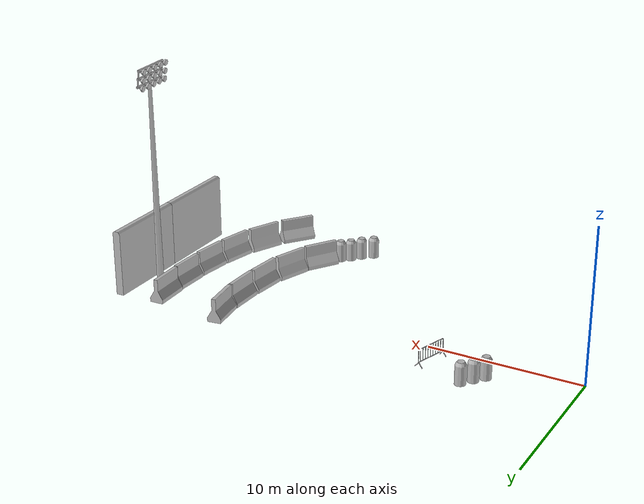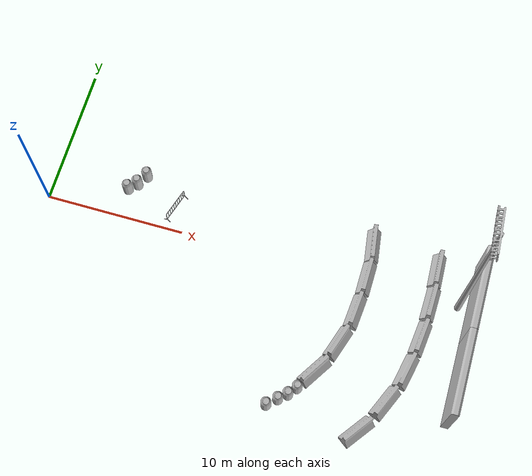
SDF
<sdf version="1.7">
 <world name="default">
  <model name="aws_robomaker_racetrack_CrashworthBucket_01_15">
   <frame name="aws_CrashworthBucket_01::__model__" attached_to="aws_CrashworthBucket_01::body">
    <pose relative_to="__model__">0 0 0 0 -0 0</pose>
   </frame>
   <link name="aws_CrashworthBucket_01::body">
    <pose relative_to="aws_CrashworthBucket_01::__model__">0 0 0 0 -0 0</pose>
    <inertial>
     <mass>5</mass>
     <inertia><ixx>1</ixx><ixy>0</ixy><ixz>0</ixz><iyy>1</iyy><iyz>0</iyz><izz>1</izz></inertia>
    </inertial>
    <visual name="visual">
     <geometry>
      <mesh>
       <uri>file://models/aws_robomaker_racetrack_CrashworthBucket_01/meshes/aws_CrashworthBucket_01_visual.DAE</uri>
      </mesh>
     </geometry>
     <material><shader type="pixel"><normal_map>__default__</normal_map></shader></material>
     <meta><layer>0</layer></meta>
    </visual>
    <collision name="collision_0">
     <geometry>
      <mesh>
       <uri>file://models/aws_robomaker_racetrack_CrashworthBucket_01/meshes/aws_CrashworthBucket_01_collision.DAE</uri>
       <scale>1 1 1</scale>
      </mesh>
     </geometry>
     <surface>
      <friction>
       <ode><mu>1</mu><mu2>1</mu2><fdir1>0 0 0</fdir1><slip1>0</slip1><slip2>0</slip2></ode>
       <torsional>
        <coefficient>1</coefficient>
        <patch_radius>0</patch_radius>
        <surface_radius>0</surface_radius>
        <use_patch_radius>1</use_patch_radius>
        <ode><slip>0</slip></ode>
       </torsional>
      </friction>
      <bounce><restitution_coefficient>0</restitution_coefficient><threshold>1e+06</threshold></bounce>
      <contact>
       <collide_without_contact>0</collide_without_contact>
       <collide_without_contact_bitmask>1</collide_without_contact_bitmask>
       <collide_bitmask>1</collide_bitmask>
       <ode>
        <soft_cfm>0</soft_cfm>
        <soft_erp>0.2</soft_erp>
        <kp>1e+13</kp>
        <kd>1</kd>
        <max_vel>0.01</max_vel>
        <min_depth>0</min_depth>
       </ode>
       <bullet>
        <split_impulse>1</split_impulse>
        <split_impulse_penetration_threshold>-0.01</split_impulse_penetration_threshold>
        <soft_cfm>0</soft_cfm>
        <soft_erp>0.2</soft_erp>
        <kp>1e+13</kp>
        <kd>1</kd>
       </bullet>
      </contact>
     </surface>
    </collision>
   </link>
   <static>1</static>
   <pose>20.8422 -8.59507 0.054 0 -0 0.012499</pose>
  </model>
  <model name="aws_robomaker_racetrack_CrashworthBucket_01_16">
   <frame name="aws_CrashworthBucket_01::__model__" attached_to="aws_CrashworthBucket_01::body">
    <pose relative_to="__model__">0 0 0 0 -0 0</pose>
   </frame>
   <link name="aws_CrashworthBucket_01::body">
    <pose relative_to="aws_CrashworthBucket_01::__model__">0 0 0 0 -0 0</pose>
    <inertial>
     <mass>5</mass>
     <inertia><ixx>1</ixx><ixy>0</ixy><ixz>0</ixz><iyy>1</iyy><iyz>0</iyz><izz>1</izz></inertia>
    </inertial>
    <visual name="visual">
     <geometry>
      <mesh>
       <uri>file://models/aws_robomaker_racetrack_CrashworthBucket_01/meshes/aws_CrashworthBucket_01_visual.DAE</uri>
      </mesh>
     </geometry>
     <material><shader type="pixel"><normal_map>__default__</normal_map></shader></material>
     <meta><layer>0</layer></meta>
    </visual>
    <collision name="collision_0">
     <geometry>
      <mesh>
       <uri>file://models/aws_robomaker_racetrack_CrashworthBucket_01/meshes/aws_CrashworthBucket_01_collision.DAE</uri>
       <scale>1 1 1</scale>
      </mesh>
     </geometry>
     <surface>
      <friction>
       <ode><mu>1</mu><mu2>1</mu2><fdir1>0 0 0</fdir1><slip1>0</slip1><slip2>0</slip2></ode>
       <torsional>
        <coefficient>1</coefficient>
        <patch_radius>0</patch_radius>
        <surface_radius>0</surface_radius>
        <use_patch_radius>1</use_patch_radius>
        <ode><slip>0</slip></ode>
       </torsional>
      </friction>
      <bounce><restitution_coefficient>0</restitution_coefficient><threshold>1e+06</threshold></bounce>
      <contact>
       <collide_without_contact>0</collide_without_contact>
       <collide_without_contact_bitmask>1</collide_without_contact_bitmask>
       <collide_bitmask>1</collide_bitmask>
       <ode>
        <soft_cfm>0</soft_cfm>
        <soft_erp>0.2</soft_erp>
        <kp>1e+13</kp>
        <kd>1</kd>
        <max_vel>0.01</max_vel>
        <min_depth>0</min_depth>
       </ode>
       <bullet>
        <split_impulse>1</split_impulse>
        <split_impulse_penetration_threshold>-0.01</split_impulse_penetration_threshold>
        <soft_cfm>0</soft_cfm>
        <soft_erp>0.2</soft_erp>
        <kp>1e+13</kp>
        <kd>1</kd>
       </bullet>
      </contact>
     </surface>
    </collision>
   </link>
   <static>1</static>
   <pose>20.3649 -9.17417 0 0 -0 0.004768</pose>
  </model>
  <model name="aws_robomaker_racetrack_CrashworthBucket_01_17">
   <frame name="aws_CrashworthBucket_01::__model__" attached_to="aws_CrashworthBucket_01::body">
    <pose relative_to="__model__">0 0 0 0 -0 0</pose>
   </frame>
   <link name="aws_CrashworthBucket_01::body">
    <pose relative_to="aws_CrashworthBucket_01::__model__">0 0 0 0 -0 0</pose>
    <inertial>
     <mass>5</mass>
     <inertia><ixx>1</ixx><ixy>0</ixy><ixz>0</ixz><iyy>1</iyy><iyz>0</iyz><izz>1</izz></inertia>
    </inertial>
    <visual name="visual">
     <geometry>
      <mesh>
       <uri>file://models/aws_robomaker_racetrack_CrashworthBucket_01/meshes/aws_CrashworthBucket_01_visual.DAE</uri>
      </mesh>
     </geometry>
     <material><shader type="pixel"><normal_map>__default__</normal_map></shader></material>
     <meta><layer>0</layer></meta>
    </visual>
    <collision name="collision_0">
     <geometry>
      <mesh>
       <uri>file://models/aws_robomaker_racetrack_CrashworthBucket_01/meshes/aws_CrashworthBucket_01_collision.DAE</uri>
       <scale>1 1 1</scale>
      </mesh>
     </geometry>
     <surface>
      <friction>
       <ode><mu>1</mu><mu2>1</mu2><fdir1>0 0 0</fdir1><slip1>0</slip1><slip2>0</slip2></ode>
       <torsional>
        <coefficient>1</coefficient>
        <patch_radius>0</patch_radius>
        <surface_radius>0</surface_radius>
        <use_patch_radius>1</use_patch_radius>
        <ode><slip>0</slip></ode>
       </torsional>
      </friction>
      <bounce><restitution_coefficient>0</restitution_coefficient><threshold>1e+06</threshold></bounce>
      <contact>
       <collide_without_contact>0</collide_without_contact>
       <collide_without_contact_bitmask>1</collide_without_contact_bitmask>
       <collide_bitmask>1</collide_bitmask>
       <ode>
        <soft_cfm>0</soft_cfm>
        <soft_erp>0.2</soft_erp>
        <kp>1e+13</kp>
        <kd>1</kd>
        <max_vel>0.01</max_vel>
        <min_depth>0</min_depth>
       </ode>
       <bullet>
        <split_impulse>1</split_impulse>
        <split_impulse_penetration_threshold>-0.01</split_impulse_penetration_threshold>
        <soft_cfm>0</soft_cfm>
        <soft_erp>0.2</soft_erp>
        <kp>1e+13</kp>
        <kd>1</kd>
       </bullet>
      </contact>
     </surface>
    </collision>
   </link>
   <static>1</static>
   <pose>19.7995 -9.67862 0.054 0 0 -0.003254</pose>
  </model>
  <model name="aws_robomaker_racetrack_CrashworthBucket_01_18">
   <frame name="aws_CrashworthBucket_01::__model__" attached_to="aws_CrashworthBucket_01::body">
    <pose relative_to="__model__">0 0 0 0 -0 0</pose>
   </frame>
   <link name="aws_CrashworthBucket_01::body">
    <pose relative_to="aws_CrashworthBucket_01::__model__">0 0 0 0 -0 0</pose>
    <inertial>
     <mass>5</mass>
     <inertia><ixx>1</ixx><ixy>0</ixy><ixz>0</ixz><iyy>1</iyy><iyz>0</iyz><izz>1</izz></inertia>
    </inertial>
    <visual name="visual">
     <geometry>
      <mesh>
       <uri>file://models/aws_robomaker_racetrack_CrashworthBucket_01/meshes/aws_CrashworthBucket_01_visual.DAE</uri>
      </mesh>
     </geometry>
     <material><shader type="pixel"><normal_map>__default__</normal_map></shader></material>
     <meta><layer>0</layer></meta>
    </visual>
    <collision name="collision_0">
     <geometry>
      <mesh>
       <uri>file://models/aws_robomaker_racetrack_CrashworthBucket_01/meshes/aws_CrashworthBucket_01_collision.DAE</uri>
       <scale>1 1 1</scale>
      </mesh>
     </geometry>
     <surface>
      <friction>
       <ode><mu>1</mu><mu2>1</mu2><fdir1>0 0 0</fdir1><slip1>0</slip1><slip2>0</slip2></ode>
       <torsional>
        <coefficient>1</coefficient>
        <patch_radius>0</patch_radius>
        <surface_radius>0</surface_radius>
        <use_patch_radius>1</use_patch_radius>
        <ode><slip>0</slip></ode>
       </torsional>
      </friction>
      <bounce><restitution_coefficient>0</restitution_coefficient><threshold>1e+06</threshold></bounce>
      <contact>
       <collide_without_contact>0</collide_without_contact>
       <collide_without_contact_bitmask>1</collide_without_contact_bitmask>
       <collide_bitmask>1</collide_bitmask>
       <ode>
        <soft_cfm>0</soft_cfm>
        <soft_erp>0.2</soft_erp>
        <kp>1e+13</kp>
        <kd>1</kd>
        <max_vel>0.01</max_vel>
        <min_depth>0</min_depth>
       </ode>
       <bullet>
        <split_impulse>1</split_impulse>
        <split_impulse_penetration_threshold>-0.01</split_impulse_penetration_threshold>
        <soft_cfm>0</soft_cfm>
        <soft_erp>0.2</soft_erp>
        <kp>1e+13</kp>
        <kd>1</kd>
       </bullet>
      </contact>
     </surface>
    </collision>
   </link>
   <static>1</static>
   <pose>19.1471 -10.2467 0.054 0 -0 0</pose>
  </model>
  <model name="aws_robomaker_racetrack_CrashworthBucket_01_45">
   <frame name="aws_CrashworthBucket_01::__model__" attached_to="aws_CrashworthBucket_01::body">
    <pose relative_to="__model__">0 0 0 0 -0 0</pose>
   </frame>
   <link name="aws_CrashworthBucket_01::body">
    <pose relative_to="aws_CrashworthBucket_01::__model__">0 0 0 0 -0 0</pose>
    <inertial>
     <mass>5</mass>
     <inertia><ixx>1</ixx><ixy>0</ixy><ixz>0</ixz><iyy>1</iyy><iyz>0</iyz><izz>1</izz></inertia>
    </inertial>
    <visual name="visual">
     <geometry>
      <mesh>
       <uri>file://models/aws_robomaker_racetrack_CrashworthBucket_01/meshes/aws_CrashworthBucket_01_visual.DAE</uri>
      </mesh>
     </geometry>
     <material><shader type="pixel"><normal_map>__default__</normal_map></shader></material>
     <meta><layer>0</layer></meta>
    </visual>
    <collision name="collision_0">
     <geometry>
      <mesh>
       <uri>file://models/aws_robomaker_racetrack_CrashworthBucket_01/meshes/aws_CrashworthBucket_01_collision.DAE</uri>
       <scale>1 1 1</scale>
      </mesh>
     </geometry>
     <surface>
      <friction>
       <ode><mu>1</mu><mu2>1</mu2><fdir1>0 0 0</fdir1><slip1>0</slip1><slip2>0</slip2></ode>
       <torsional>
        <coefficient>1</coefficient>
        <patch_radius>0</patch_radius>
        <surface_radius>0</surface_radius>
        <use_patch_radius>1</use_patch_radius>
        <ode><slip>0</slip></ode>
       </torsional>
      </friction>
      <bounce><restitution_coefficient>0</restitution_coefficient><threshold>1e+06</threshold></bounce>
      <contact>
       <collide_without_contact>0</collide_without_contact>
       <collide_without_contact_bitmask>1</collide_without_contact_bitmask>
       <collide_bitmask>1</collide_bitmask>
       <ode>
        <soft_cfm>0</soft_cfm>
        <soft_erp>0.2</soft_erp>
        <kp>1e+13</kp>
        <kd>1</kd>
        <max_vel>0.01</max_vel>
        <min_depth>0</min_depth>
       </ode>
       <bullet>
        <split_impulse>1</split_impulse>
        <split_impulse_penetration_threshold>-0.01</split_impulse_penetration_threshold>
        <soft_cfm>0</soft_cfm>
        <soft_erp>0.2</soft_erp>
        <kp>1e+13</kp>
        <kd>1</kd>
       </bullet>
      </contact>
     </surface>
    </collision>
   </link>
   <static>1</static>
   <pose>5.3642 2.03973 0.054 0 0 -0.008872</pose>
  </model>
  <model name="aws_robomaker_racetrack_CrashworthBucket_01_46">
   <frame name="aws_CrashworthBucket_01::__model__" attached_to="aws_CrashworthBucket_01::body">
    <pose relative_to="__model__">0 0 0 0 -0 0</pose>
   </frame>
   <link name="aws_CrashworthBucket_01::body">
    <pose relative_to="aws_CrashworthBucket_01::__model__">0 0 0 0 -0 0</pose>
    <inertial>
     <mass>5</mass>
     <inertia><ixx>1</ixx><ixy>0</ixy><ixz>0</ixz><iyy>1</iyy><iyz>0</iyz><izz>1</izz></inertia>
    </inertial>
    <visual name="visual">
     <geometry>
      <mesh>
       <uri>file://models/aws_robomaker_racetrack_CrashworthBucket_01/meshes/aws_CrashworthBucket_01_visual.DAE</uri>
      </mesh>
     </geometry>
     <material><shader type="pixel"><normal_map>__default__</normal_map></shader></material>
     <meta><layer>0</layer></meta>
    </visual>
    <collision name="collision_0">
     <geometry>
      <mesh>
       <uri>file://models/aws_robomaker_racetrack_CrashworthBucket_01/meshes/aws_CrashworthBucket_01_collision.DAE</uri>
       <scale>1 1 1</scale>
      </mesh>
     </geometry>
     <surface>
      <friction>
       <ode><mu>1</mu><mu2>1</mu2><fdir1>0 0 0</fdir1><slip1>0</slip1><slip2>0</slip2></ode>
       <torsional>
        <coefficient>1</coefficient>
        <patch_radius>0</patch_radius>
        <surface_radius>0</surface_radius>
        <use_patch_radius>1</use_patch_radius>
        <ode><slip>0</slip></ode>
       </torsional>
      </friction>
      <bounce><restitution_coefficient>0</restitution_coefficient><threshold>1e+06</threshold></bounce>
      <contact>
       <collide_without_contact>0</collide_without_contact>
       <collide_without_contact_bitmask>1</collide_without_contact_bitmask>
       <collide_bitmask>1</collide_bitmask>
       <ode>
        <soft_cfm>0</soft_cfm>
        <soft_erp>0.2</soft_erp>
        <kp>1e+13</kp>
        <kd>1</kd>
        <max_vel>0.01</max_vel>
        <min_depth>0</min_depth>
       </ode>
       <bullet>
        <split_impulse>1</split_impulse>
        <split_impulse_penetration_threshold>-0.01</split_impulse_penetration_threshold>
        <soft_cfm>0</soft_cfm>
        <soft_erp>0.2</soft_erp>
        <kp>1e+13</kp>
        <kd>1</kd>
       </bullet>
      </contact>
     </surface>
    </collision>
   </link>
   <static>1</static>
   <pose>5.91311 2.58362 0 0 0 -0.010849</pose>
  </model>
  <model name="aws_robomaker_racetrack_CrashworthBucket_01_47">
   <frame name="aws_CrashworthBucket_01::__model__" attached_to="aws_CrashworthBucket_01::body">
    <pose relative_to="__model__">0 0 0 0 -0 0</pose>
   </frame>
   <link name="aws_CrashworthBucket_01::body">
    <pose relative_to="aws_CrashworthBucket_01::__model__">0 0 0 0 -0 0</pose>
    <inertial>
     <mass>5</mass>
     <inertia><ixx>1</ixx><ixy>0</ixy><ixz>0</ixz><iyy>1</iyy><iyz>0</iyz><izz>1</izz></inertia>
    </inertial>
    <visual name="visual">
     <geometry>
      <mesh>
       <uri>file://models/aws_robomaker_racetrack_CrashworthBucket_01/meshes/aws_CrashworthBucket_01_visual.DAE</uri>
      </mesh>
     </geometry>
     <material><shader type="pixel"><normal_map>__default__</normal_map></shader></material>
     <meta><layer>0</layer></meta>
    </visual>
    <collision name="collision_0">
     <geometry>
      <mesh>
       <uri>file://models/aws_robomaker_racetrack_CrashworthBucket_01/meshes/aws_CrashworthBucket_01_collision.DAE</uri>
       <scale>1 1 1</scale>
      </mesh>
     </geometry>
     <surface>
      <friction>
       <ode><mu>1</mu><mu2>1</mu2><fdir1>0 0 0</fdir1><slip1>0</slip1><slip2>0</slip2></ode>
       <torsional>
        <coefficient>1</coefficient>
        <patch_radius>0</patch_radius>
        <surface_radius>0</surface_radius>
        <use_patch_radius>1</use_patch_radius>
        <ode><slip>0</slip></ode>
       </torsional>
      </friction>
      <bounce><restitution_coefficient>0</restitution_coefficient><threshold>1e+06</threshold></bounce>
      <contact>
       <collide_without_contact>0</collide_without_contact>
       <collide_without_contact_bitmask>1</collide_without_contact_bitmask>
       <collide_bitmask>1</collide_bitmask>
       <ode>
        <soft_cfm>0</soft_cfm>
        <soft_erp>0.2</soft_erp>
        <kp>1e+13</kp>
        <kd>1</kd>
        <max_vel>0.01</max_vel>
        <min_depth>0</min_depth>
       </ode>
       <bullet>
        <split_impulse>1</split_impulse>
        <split_impulse_penetration_threshold>-0.01</split_impulse_penetration_threshold>
        <soft_cfm>0</soft_cfm>
        <soft_erp>0.2</soft_erp>
        <kp>1e+13</kp>
        <kd>1</kd>
       </bullet>
      </contact>
     </surface>
    </collision>
   </link>
   <static>1</static>
   <pose>6.38729 3.3437 0.054 0 -0 0</pose>
  </model>
  <model name="aws_robomaker_racetrack_Fence_02_01">
   <frame name="aws_Fence_02::__model__" attached_to="aws_Fence_02::body">
    <pose relative_to="__model__">0 0 0 0 -0 0</pose>
   </frame>
   <link name="aws_Fence_02::body">
    <pose relative_to="aws_Fence_02::__model__">0 0 0 0 -0 0</pose>
    <inertial>
     <mass>5</mass>
     <inertia><ixx>9.6</ixx><ixy>0</ixy><ixz>0</ixz><iyy>8.2</iyy><iyz>0</iyz><izz>2.1</izz></inertia>
    </inertial>
    <visual name="visual">
     <geometry>
      <mesh><uri>file://models/aws_robomaker_racetrack_Fence_02/meshes/aws_Fence_02_visual.DAE</uri></mesh>
     </geometry>
     <material><shader type="pixel"><normal_map>__default__</normal_map></shader></material>
     <meta><layer>0</layer></meta>
    </visual>
    <collision name="collision_0">
     <geometry>
      <mesh>
       <uri>file://models/aws_robomaker_racetrack_Fence_02/meshes/aws_Fence_02_collision.DAE</uri>
       <scale>1 1 1</scale>
      </mesh>
     </geometry>
     <surface>
      <friction>
       <ode><mu>1</mu><mu2>1</mu2><fdir1>0 0 0</fdir1><slip1>0</slip1><slip2>0</slip2></ode>
       <torsional>
        <coefficient>1</coefficient>
        <patch_radius>0</patch_radius>
        <surface_radius>0</surface_radius>
        <use_patch_radius>1</use_patch_radius>
        <ode><slip>0</slip></ode>
       </torsional>
      </friction>
      <bounce><restitution_coefficient>0</restitution_coefficient><threshold>1e+06</threshold></bounce>
      <contact>
       <collide_without_contact>0</collide_without_contact>
       <collide_without_contact_bitmask>1</collide_without_contact_bitmask>
       <collide_bitmask>1</collide_bitmask>
      </contact>
     </surface>
    </collision>
   </link>
   <static>1</static>
   <pose>9.06357 1.626 0 0 0 -0.300407</pose>
  </model>
  <model name="aws_robomaker_racetrack_StonePier_01_11">
   <frame name="aws_StonePier_01::__model__" attached_to="aws_StonePier_01::body">
    <pose relative_to="__model__">0 0 0 0 -0 0</pose>
   </frame>
   <link name="aws_StonePier_01::body">
    <pose relative_to="aws_StonePier_01::__model__">0 0 0 0 -0 0</pose>
    <inertial>
     <mass>10</mass>
     <inertia><ixx>0</ixx><ixy>0</ixy><ixz>0</ixz><iyy>0</iyy><iyz>0</iyz><izz>0</izz></inertia>
    </inertial>
    <visual name="visual">
     <geometry>
      <mesh><uri>file://models/aws_robomaker_racetrack_StonePier_01/meshes/aws_StonePier_01_visual.DAE</uri></mesh>
     </geometry>
     <material><shader type="pixel"><normal_map>__default__</normal_map></shader></material>
     <meta><layer>0</layer></meta>
    </visual>
    <collision name="collision_0">
     <geometry>
      <mesh>
       <uri>file://models/aws_robomaker_racetrack_StonePier_01/meshes/aws_StonePier_01_collision.DAE</uri>
       <scale>1 1 1</scale>
      </mesh>
     </geometry>
     <surface>
      <friction>
       <ode><mu>1</mu><mu2>1</mu2><fdir1>0 0 0</fdir1><slip1>0</slip1><slip2>0</slip2></ode>
       <torsional>
        <coefficient>1</coefficient>
        <patch_radius>0</patch_radius>
        <surface_radius>0</surface_radius>
        <use_patch_radius>1</use_patch_radius>
        <ode><slip>0</slip></ode>
       </torsional>
      </friction>
      <bounce><restitution_coefficient>0</restitution_coefficient><threshold>1e+06</threshold></bounce>
      <contact>
       <collide_without_contact>0</collide_without_contact>
       <collide_without_contact_bitmask>1</collide_without_contact_bitmask>
       <collide_bitmask>1</collide_bitmask>
       <ode>
        <soft_cfm>0</soft_cfm>
        <soft_erp>0.2</soft_erp>
        <kp>1e+13</kp>
        <kd>1</kd>
        <max_vel>0.01</max_vel>
        <min_depth>0</min_depth>
       </ode>
       <bullet>
        <split_impulse>1</split_impulse>
        <split_impulse_penetration_threshold>-0.01</split_impulse_penetration_threshold>
        <soft_cfm>0</soft_cfm>
        <soft_erp>0.2</soft_erp>
        <kp>1e+13</kp>
        <kd>1</kd>
       </bullet>
      </contact>
     </surface>
    </collision>
   </link>
   <static>1</static>
   <pose>23.2964 2.57509 0.054 0 0 -1.43498</pose>
  </model>
  <model name="aws_robomaker_racetrack_StonePier_01_12">
   <frame name="aws_StonePier_01::__model__" attached_to="aws_StonePier_01::body">
    <pose relative_to="__model__">0 0 0 0 -0 0</pose>
   </frame>
   <link name="aws_StonePier_01::body">
    <pose relative_to="aws_StonePier_01::__model__">0 0 0 0 -0 0</pose>
    <inertial>
     <mass>10</mass>
     <inertia><ixx>0</ixx><ixy>0</ixy><ixz>0</ixz><iyy>0</iyy><iyz>0</iyz><izz>0</izz></inertia>
    </inertial>
    <visual name="visual">
     <geometry>
      <mesh><uri>file://models/aws_robomaker_racetrack_StonePier_01/meshes/aws_StonePier_01_visual.DAE</uri></mesh>
     </geometry>
     <material><shader type="pixel"><normal_map>__default__</normal_map></shader></material>
     <meta><layer>0</layer></meta>
    </visual>
    <collision name="collision_0">
     <geometry>
      <mesh>
       <uri>file://models/aws_robomaker_racetrack_StonePier_01/meshes/aws_StonePier_01_collision.DAE</uri>
       <scale>1 1 1</scale>
      </mesh>
     </geometry>
     <surface>
      <friction>
       <ode><mu>1</mu><mu2>1</mu2><fdir1>0 0 0</fdir1><slip1>0</slip1><slip2>0</slip2></ode>
       <torsional>
        <coefficient>1</coefficient>
        <patch_radius>0</patch_radius>
        <surface_radius>0</surface_radius>
        <use_patch_radius>1</use_patch_radius>
        <ode><slip>0</slip></ode>
       </torsional>
      </friction>
      <bounce><restitution_coefficient>0</restitution_coefficient><threshold>1e+06</threshold></bounce>
      <contact>
       <collide_without_contact>0</collide_without_contact>
       <collide_without_contact_bitmask>1</collide_without_contact_bitmask>
       <collide_bitmask>1</collide_bitmask>
       <ode>
        <soft_cfm>0</soft_cfm>
        <soft_erp>0.2</soft_erp>
        <kp>1e+13</kp>
        <kd>1</kd>
        <max_vel>0.01</max_vel>
        <min_depth>0</min_depth>
       </ode>
       <bullet>
        <split_impulse>1</split_impulse>
        <split_impulse_penetration_threshold>-0.01</split_impulse_penetration_threshold>
        <soft_cfm>0</soft_cfm>
        <soft_erp>0.2</soft_erp>
        <kp>1e+13</kp>
        <kd>1</kd>
       </bullet>
      </contact>
     </surface>
    </collision>
   </link>
   <static>1</static>
   <pose>23.4326 0.10745 0.054 0 0 -1.58404</pose>
  </model>
  <model name="aws_robomaker_racetrack_StonePier_01_13">
   <frame name="aws_StonePier_01::__model__" attached_to="aws_StonePier_01::body">
    <pose relative_to="__model__">0 0 0 0 -0 0</pose>
   </frame>
   <link name="aws_StonePier_01::body">
    <pose relative_to="aws_StonePier_01::__model__">0 0 0 0 -0 0</pose>
    <inertial>
     <mass>10</mass>
     <inertia><ixx>0</ixx><ixy>0</ixy><ixz>0</ixz><iyy>0</iyy><iyz>0</iyz><izz>0</izz></inertia>
    </inertial>
    <visual name="visual">
     <geometry>
      <mesh><uri>file://models/aws_robomaker_racetrack_StonePier_01/meshes/aws_StonePier_01_visual.DAE</uri></mesh>
     </geometry>
     <material><shader type="pixel"><normal_map>__default__</normal_map></shader></material>
     <meta><layer>0</layer></meta>
    </visual>
    <collision name="collision_0">
     <geometry>
      <mesh>
       <uri>file://models/aws_robomaker_racetrack_StonePier_01/meshes/aws_StonePier_01_collision.DAE</uri>
       <scale>1 1 1</scale>
      </mesh>
     </geometry>
     <surface>
      <friction>
       <ode><mu>1</mu><mu2>1</mu2><fdir1>0 0 0</fdir1><slip1>0</slip1><slip2>0</slip2></ode>
       <torsional>
        <coefficient>1</coefficient>
        <patch_radius>0</patch_radius>
        <surface_radius>0</surface_radius>
        <use_patch_radius>1</use_patch_radius>
        <ode><slip>0</slip></ode>
       </torsional>
      </friction>
      <bounce><restitution_coefficient>0</restitution_coefficient><threshold>1e+06</threshold></bounce>
      <contact>
       <collide_without_contact>0</collide_without_contact>
       <collide_without_contact_bitmask>1</collide_without_contact_bitmask>
       <collide_bitmask>1</collide_bitmask>
       <ode>
        <soft_cfm>0</soft_cfm>
        <soft_erp>0.2</soft_erp>
        <kp>1e+13</kp>
        <kd>1</kd>
        <max_vel>0.01</max_vel>
        <min_depth>0</min_depth>
       </ode>
       <bullet>
        <split_impulse>1</split_impulse>
        <split_impulse_penetration_threshold>-0.01</split_impulse_penetration_threshold>
        <soft_cfm>0</soft_cfm>
        <soft_erp>0.2</soft_erp>
        <kp>1e+13</kp>
        <kd>1</kd>
       </bullet>
      </contact>
     </surface>
    </collision>
   </link>
   <static>1</static>
   <pose>23.2774 -2.40527 0.054 0 0 -1.65922</pose>
  </model>
  <model name="aws_robomaker_racetrack_StonePier_01_14">
   <frame name="aws_StonePier_01::__model__" attached_to="aws_StonePier_01::body">
    <pose relative_to="__model__">0 0 0 0 -0 0</pose>
   </frame>
   <link name="aws_StonePier_01::body">
    <pose relative_to="aws_StonePier_01::__model__">0 0 0 0 -0 0</pose>
    <inertial>
     <mass>10</mass>
     <inertia><ixx>0</ixx><ixy>0</ixy><ixz>0</ixz><iyy>0</iyy><iyz>0</iyz><izz>0</izz></inertia>
    </inertial>
    <visual name="visual">
     <geometry>
      <mesh><uri>file://models/aws_robomaker_racetrack_StonePier_01/meshes/aws_StonePier_01_visual.DAE</uri></mesh>
     </geometry>
     <material><shader type="pixel"><normal_map>__default__</normal_map></shader></material>
     <meta><layer>0</layer></meta>
    </visual>
    <collision name="collision_0">
     <geometry>
      <mesh>
       <uri>file://models/aws_robomaker_racetrack_StonePier_01/meshes/aws_StonePier_01_collision.DAE</uri>
       <scale>1 1 1</scale>
      </mesh>
     </geometry>
     <surface>
      <friction>
       <ode><mu>1</mu><mu2>1</mu2><fdir1>0 0 0</fdir1><slip1>0</slip1><slip2>0</slip2></ode>
       <torsional>
        <coefficient>1</coefficient>
        <patch_radius>0</patch_radius>
        <surface_radius>0</surface_radius>
        <use_patch_radius>1</use_patch_radius>
        <ode><slip>0</slip></ode>
       </torsional>
      </friction>
      <bounce><restitution_coefficient>0</restitution_coefficient><threshold>1e+06</threshold></bounce>
      <contact>
       <collide_without_contact>0</collide_without_contact>
       <collide_without_contact_bitmask>1</collide_without_contact_bitmask>
       <collide_bitmask>1</collide_bitmask>
       <ode>
        <soft_cfm>0</soft_cfm>
        <soft_erp>0.2</soft_erp>
        <kp>1e+13</kp>
        <kd>1</kd>
        <max_vel>0.01</max_vel>
        <min_depth>0</min_depth>
       </ode>
       <bullet>
        <split_impulse>1</split_impulse>
        <split_impulse_penetration_threshold>-0.01</split_impulse_penetration_threshold>
        <soft_cfm>0</soft_cfm>
        <soft_erp>0.2</soft_erp>
        <kp>1e+13</kp>
        <kd>1</kd>
       </bullet>
      </contact>
     </surface>
    </collision>
   </link>
   <static>1</static>
   <pose>22.705 -4.89186 0.054 0 0 -1.88566</pose>
  </model>
  <model name="aws_robomaker_racetrack_StonePier_01_15">
   <frame name="aws_StonePier_01::__model__" attached_to="aws_StonePier_01::body">
    <pose relative_to="__model__">0 0 0 0 -0 0</pose>
   </frame>
   <link name="aws_StonePier_01::body">
    <pose relative_to="aws_StonePier_01::__model__">0 0 0 0 -0 0</pose>
    <inertial>
     <mass>10</mass>
     <inertia><ixx>0</ixx><ixy>0</ixy><ixz>0</ixz><iyy>0</iyy><iyz>0</iyz><izz>0</izz></inertia>
    </inertial>
    <visual name="visual">
     <geometry>
      <mesh><uri>file://models/aws_robomaker_racetrack_StonePier_01/meshes/aws_StonePier_01_visual.DAE</uri></mesh>
     </geometry>
     <material><shader type="pixel"><normal_map>__default__</normal_map></shader></material>
     <meta><layer>0</layer></meta>
    </visual>
    <collision name="collision_0">
     <geometry>
      <mesh>
       <uri>file://models/aws_robomaker_racetrack_StonePier_01/meshes/aws_StonePier_01_collision.DAE</uri>
       <scale>1 1 1</scale>
      </mesh>
     </geometry>
     <surface>
      <friction>
       <ode><mu>1</mu><mu2>1</mu2><fdir1>0 0 0</fdir1><slip1>0</slip1><slip2>0</slip2></ode>
       <torsional>
        <coefficient>1</coefficient>
        <patch_radius>0</patch_radius>
        <surface_radius>0</surface_radius>
        <use_patch_radius>1</use_patch_radius>
        <ode><slip>0</slip></ode>
       </torsional>
      </friction>
      <bounce><restitution_coefficient>0</restitution_coefficient><threshold>1e+06</threshold></bounce>
      <contact>
       <collide_without_contact>0</collide_without_contact>
       <collide_without_contact_bitmask>1</collide_without_contact_bitmask>
       <collide_bitmask>1</collide_bitmask>
       <ode>
        <soft_cfm>0</soft_cfm>
        <soft_erp>0.2</soft_erp>
        <kp>1e+13</kp>
        <kd>1</kd>
        <max_vel>0.01</max_vel>
        <min_depth>0</min_depth>
       </ode>
       <bullet>
        <split_impulse>1</split_impulse>
        <split_impulse_penetration_threshold>-0.01</split_impulse_penetration_threshold>
        <soft_cfm>0</soft_cfm>
        <soft_erp>0.2</soft_erp>
        <kp>1e+13</kp>
        <kd>1</kd>
       </bullet>
      </contact>
     </surface>
    </collision>
   </link>
   <static>1</static>
   <pose>21.6688 -7.19526 0.054 0 0 -2.13625</pose>
  </model>
  <model name="aws_robomaker_racetrack_StonePier_01_16">
   <frame name="aws_StonePier_01::__model__" attached_to="aws_StonePier_01::body">
    <pose relative_to="__model__">0 0 0 0 -0 0</pose>
   </frame>
   <link name="aws_StonePier_01::body">
    <pose relative_to="aws_StonePier_01::__model__">0 0 0 0 -0 0</pose>
    <inertial>
     <mass>10</mass>
     <inertia><ixx>0</ixx><ixy>0</ixy><ixz>0</ixz><iyy>0</iyy><iyz>0</iyz><izz>0</izz></inertia>
    </inertial>
    <visual name="visual">
     <geometry>
      <mesh><uri>file://models/aws_robomaker_racetrack_StonePier_01/meshes/aws_StonePier_01_visual.DAE</uri></mesh>
     </geometry>
     <material><shader type="pixel"><normal_map>__default__</normal_map></shader></material>
     <meta><layer>0</layer></meta>
    </visual>
    <collision name="collision_0">
     <geometry>
      <mesh>
       <uri>file://models/aws_robomaker_racetrack_StonePier_01/meshes/aws_StonePier_01_collision.DAE</uri>
       <scale>1 1 1</scale>
      </mesh>
     </geometry>
     <surface>
      <friction>
       <ode><mu>1</mu><mu2>1</mu2><fdir1>0 0 0</fdir1><slip1>0</slip1><slip2>0</slip2></ode>
       <torsional>
        <coefficient>1</coefficient>
        <patch_radius>0</patch_radius>
        <surface_radius>0</surface_radius>
        <use_patch_radius>1</use_patch_radius>
        <ode><slip>0</slip></ode>
       </torsional>
      </friction>
      <bounce><restitution_coefficient>0</restitution_coefficient><threshold>1e+06</threshold></bounce>
      <contact>
       <collide_without_contact>0</collide_without_contact>
       <collide_without_contact_bitmask>1</collide_without_contact_bitmask>
       <collide_bitmask>1</collide_bitmask>
       <ode>
        <soft_cfm>0</soft_cfm>
        <soft_erp>0.2</soft_erp>
        <kp>1e+13</kp>
        <kd>1</kd>
        <max_vel>0.01</max_vel>
        <min_depth>0</min_depth>
       </ode>
       <bullet>
        <split_impulse>1</split_impulse>
        <split_impulse_penetration_threshold>-0.01</split_impulse_penetration_threshold>
        <soft_cfm>0</soft_cfm>
        <soft_erp>0.2</soft_erp>
        <kp>1e+13</kp>
        <kd>1</kd>
       </bullet>
      </contact>
     </surface>
    </collision>
   </link>
   <static>1</static>
   <pose>28.1211 -0.475719 0.054 0 0 -1.59506</pose>
  </model>
  <model name="aws_robomaker_racetrack_StonePier_01_18">
   <frame name="aws_StonePier_01::__model__" attached_to="aws_StonePier_01::body">
    <pose relative_to="__model__">0 0 0 0 -0 0</pose>
   </frame>
   <link name="aws_StonePier_01::body">
    <pose relative_to="aws_StonePier_01::__model__">0 0 0 0 -0 0</pose>
    <inertial>
     <mass>10</mass>
     <inertia><ixx>0</ixx><ixy>0</ixy><ixz>0</ixz><iyy>0</iyy><iyz>0</iyz><izz>0</izz></inertia>
    </inertial>
    <visual name="visual">
     <geometry>
      <mesh><uri>file://models/aws_robomaker_racetrack_StonePier_01/meshes/aws_StonePier_01_visual.DAE</uri></mesh>
     </geometry>
     <material><shader type="pixel"><normal_map>__default__</normal_map></shader></material>
     <meta><layer>0</layer></meta>
    </visual>
    <collision name="collision_0">
     <geometry>
      <mesh>
       <uri>file://models/aws_robomaker_racetrack_StonePier_01/meshes/aws_StonePier_01_collision.DAE</uri>
       <scale>1 1 1</scale>
      </mesh>
     </geometry>
     <surface>
      <friction>
       <ode><mu>1</mu><mu2>1</mu2><fdir1>0 0 0</fdir1><slip1>0</slip1><slip2>0</slip2></ode>
       <torsional>
        <coefficient>1</coefficient>
        <patch_radius>0</patch_radius>
        <surface_radius>0</surface_radius>
        <use_patch_radius>1</use_patch_radius>
        <ode><slip>0</slip></ode>
       </torsional>
      </friction>
      <bounce><restitution_coefficient>0</restitution_coefficient><threshold>1e+06</threshold></bounce>
      <contact>
       <collide_without_contact>0</collide_without_contact>
       <collide_without_contact_bitmask>1</collide_without_contact_bitmask>
       <collide_bitmask>1</collide_bitmask>
       <ode>
        <soft_cfm>0</soft_cfm>
        <soft_erp>0.2</soft_erp>
        <kp>1e+13</kp>
        <kd>1</kd>
        <max_vel>0.01</max_vel>
        <min_depth>0</min_depth>
       </ode>
       <bullet>
        <split_impulse>1</split_impulse>
        <split_impulse_penetration_threshold>-0.01</split_impulse_penetration_threshold>
        <soft_cfm>0</soft_cfm>
        <soft_erp>0.2</soft_erp>
        <kp>1e+13</kp>
        <kd>1</kd>
       </bullet>
      </contact>
     </surface>
    </collision>
   </link>
   <static>1</static>
   <pose>28.0027 -3.03906 0.054 0 0 -1.68291</pose>
  </model>
  <model name="aws_robomaker_racetrack_StonePier_01_25">
   <frame name="aws_StonePier_01::__model__" attached_to="aws_StonePier_01::body">
    <pose relative_to="__model__">0 0 0 0 -0 0</pose>
   </frame>
   <link name="aws_StonePier_01::body">
    <pose relative_to="aws_StonePier_01::__model__">0 0 0 0 -0 0</pose>
    <inertial>
     <mass>10</mass>
     <inertia><ixx>0</ixx><ixy>0</ixy><ixz>0</ixz><iyy>0</iyy><iyz>0</iyz><izz>0</izz></inertia>
    </inertial>
    <visual name="visual">
     <geometry>
      <mesh><uri>file://models/aws_robomaker_racetrack_StonePier_01/meshes/aws_StonePier_01_visual.DAE</uri></mesh>
     </geometry>
     <material><shader type="pixel"><normal_map>__default__</normal_map></shader></material>
     <meta><layer>0</layer></meta>
    </visual>
    <collision name="collision_0">
     <geometry>
      <mesh>
       <uri>file://models/aws_robomaker_racetrack_StonePier_01/meshes/aws_StonePier_01_collision.DAE</uri>
       <scale>1 1 1</scale>
      </mesh>
     </geometry>
     <surface>
      <friction>
       <ode><mu>1</mu><mu2>1</mu2><fdir1>0 0 0</fdir1><slip1>0</slip1><slip2>0</slip2></ode>
       <torsional>
        <coefficient>1</coefficient>
        <patch_radius>0</patch_radius>
        <surface_radius>0</surface_radius>
        <use_patch_radius>1</use_patch_radius>
        <ode><slip>0</slip></ode>
       </torsional>
      </friction>
      <bounce><restitution_coefficient>0</restitution_coefficient><threshold>1e+06</threshold></bounce>
      <contact>
       <collide_without_contact>0</collide_without_contact>
       <collide_without_contact_bitmask>1</collide_without_contact_bitmask>
       <collide_bitmask>1</collide_bitmask>
       <ode>
        <soft_cfm>0</soft_cfm>
        <soft_erp>0.2</soft_erp>
        <kp>1e+13</kp>
        <kd>1</kd>
        <max_vel>0.01</max_vel>
        <min_depth>0</min_depth>
       </ode>
       <bullet>
        <split_impulse>1</split_impulse>
        <split_impulse_penetration_threshold>-0.01</split_impulse_penetration_threshold>
        <soft_cfm>0</soft_cfm>
        <soft_erp>0.2</soft_erp>
        <kp>1e+13</kp>
        <kd>1</kd>
       </bullet>
      </contact>
     </surface>
    </collision>
   </link>
   <static>1</static>
   <pose>25.3929 -10.3347 0.054 0 -0 0.931507</pose>
  </model>
  <model name="aws_robomaker_racetrack_StonePier_01_29">
   <frame name="aws_StonePier_01::__model__" attached_to="aws_StonePier_01::body">
    <pose relative_to="__model__">0 0 0 0 -0 0</pose>
   </frame>
   <link name="aws_StonePier_01::body">
    <pose relative_to="aws_StonePier_01::__model__">0 0 0 0 -0 0</pose>
    <inertial>
     <mass>10</mass>
     <inertia><ixx>0</ixx><ixy>0</ixy><ixz>0</ixz><iyy>0</iyy><iyz>0</iyz><izz>0</izz></inertia>
    </inertial>
    <visual name="visual">
     <geometry>
      <mesh><uri>file://models/aws_robomaker_racetrack_StonePier_01/meshes/aws_StonePier_01_visual.DAE</uri></mesh>
     </geometry>
     <material><shader type="pixel"><normal_map>__default__</normal_map></shader></material>
     <meta><layer>0</layer></meta>
    </visual>
    <collision name="collision_0">
     <geometry>
      <mesh>
       <uri>file://models/aws_robomaker_racetrack_StonePier_01/meshes/aws_StonePier_01_collision.DAE</uri>
       <scale>1 1 1</scale>
      </mesh>
     </geometry>
     <surface>
      <friction>
       <ode><mu>1</mu><mu2>1</mu2><fdir1>0 0 0</fdir1><slip1>0</slip1><slip2>0</slip2></ode>
       <torsional>
        <coefficient>1</coefficient>
        <patch_radius>0</patch_radius>
        <surface_radius>0</surface_radius>
        <use_patch_radius>1</use_patch_radius>
        <ode><slip>0</slip></ode>
       </torsional>
      </friction>
      <bounce><restitution_coefficient>0</restitution_coefficient><threshold>1e+06</threshold></bounce>
      <contact>
       <collide_without_contact>0</collide_without_contact>
       <collide_without_contact_bitmask>1</collide_without_contact_bitmask>
       <collide_bitmask>1</collide_bitmask>
       <ode>
        <soft_cfm>0</soft_cfm>
        <soft_erp>0.2</soft_erp>
        <kp>1e+13</kp>
        <kd>1</kd>
        <max_vel>0.01</max_vel>
        <min_depth>0</min_depth>
       </ode>
       <bullet>
        <split_impulse>1</split_impulse>
        <split_impulse_penetration_threshold>-0.01</split_impulse_penetration_threshold>
        <soft_cfm>0</soft_cfm>
        <soft_erp>0.2</soft_erp>
        <kp>1e+13</kp>
        <kd>1</kd>
       </bullet>
      </contact>
     </surface>
    </collision>
   </link>
   <static>1</static>
   <pose>26.7385 -7.99231 0.054 0 -0 1.16098</pose>
  </model>
  <model name="aws_robomaker_racetrack_StonePier_01_30">
   <frame name="aws_StonePier_01::__model__" attached_to="aws_StonePier_01::body">
    <pose relative_to="__model__">0 0 0 0 -0 0</pose>
   </frame>
   <link name="aws_StonePier_01::body">
    <pose relative_to="aws_StonePier_01::__model__">0 0 0 0 -0 0</pose>
    <inertial>
     <mass>10</mass>
     <inertia><ixx>0</ixx><ixy>0</ixy><ixz>0</ixz><iyy>0</iyy><iyz>0</iyz><izz>0</izz></inertia>
    </inertial>
    <visual name="visual">
     <geometry>
      <mesh><uri>file://models/aws_robomaker_racetrack_StonePier_01/meshes/aws_StonePier_01_visual.DAE</uri></mesh>
     </geometry>
     <material><shader type="pixel"><normal_map>__default__</normal_map></shader></material>
     <meta><layer>0</layer></meta>
    </visual>
    <collision name="collision_0">
     <geometry>
      <mesh>
       <uri>file://models/aws_robomaker_racetrack_StonePier_01/meshes/aws_StonePier_01_collision.DAE</uri>
       <scale>1 1 1</scale>
      </mesh>
     </geometry>
     <surface>
      <friction>
       <ode><mu>1</mu><mu2>1</mu2><fdir1>0 0 0</fdir1><slip1>0</slip1><slip2>0</slip2></ode>
       <torsional>
        <coefficient>1</coefficient>
        <patch_radius>0</patch_radius>
        <surface_radius>0</surface_radius>
        <use_patch_radius>1</use_patch_radius>
        <ode><slip>0</slip></ode>
       </torsional>
      </friction>
      <bounce><restitution_coefficient>0</restitution_coefficient><threshold>1e+06</threshold></bounce>
      <contact>
       <collide_without_contact>0</collide_without_contact>
       <collide_without_contact_bitmask>1</collide_without_contact_bitmask>
       <collide_bitmask>1</collide_bitmask>
       <ode>
        <soft_cfm>0</soft_cfm>
        <soft_erp>0.2</soft_erp>
        <kp>1e+13</kp>
        <kd>1</kd>
        <max_vel>0.01</max_vel>
        <min_depth>0</min_depth>
       </ode>
       <bullet>
        <split_impulse>1</split_impulse>
        <split_impulse_penetration_threshold>-0.01</split_impulse_penetration_threshold>
        <soft_cfm>0</soft_cfm>
        <soft_erp>0.2</soft_erp>
        <kp>1e+13</kp>
        <kd>1</kd>
       </bullet>
      </contact>
     </surface>
    </collision>
   </link>
   <static>1</static>
   <pose>27.5962 -5.54706 0.054 0 -0 1.36231</pose>
  </model>
  <model name="aws_robomaker_racetrack_StonePier_01_31">
   <frame name="aws_StonePier_01::__model__" attached_to="aws_StonePier_01::body">
    <pose relative_to="__model__">0 0 0 0 -0 0</pose>
   </frame>
   <link name="aws_StonePier_01::body">
    <pose relative_to="aws_StonePier_01::__model__">0 0 0 0 -0 0</pose>
    <inertial>
     <mass>10</mass>
     <inertia><ixx>0</ixx><ixy>0</ixy><ixz>0</ixz><iyy>0</iyy><iyz>0</iyz><izz>0</izz></inertia>
    </inertial>
    <visual name="visual">
     <geometry>
      <mesh><uri>file://models/aws_robomaker_racetrack_StonePier_01/meshes/aws_StonePier_01_visual.DAE</uri></mesh>
     </geometry>
     <material><shader type="pixel"><normal_map>__default__</normal_map></shader></material>
     <meta><layer>0</layer></meta>
    </visual>
    <collision name="collision_0">
     <geometry>
      <mesh>
       <uri>file://models/aws_robomaker_racetrack_StonePier_01/meshes/aws_StonePier_01_collision.DAE</uri>
       <scale>1 1 1</scale>
      </mesh>
     </geometry>
     <surface>
      <friction>
       <ode><mu>1</mu><mu2>1</mu2><fdir1>0 0 0</fdir1><slip1>0</slip1><slip2>0</slip2></ode>
       <torsional>
        <coefficient>1</coefficient>
        <patch_radius>0</patch_radius>
        <surface_radius>0</surface_radius>
        <use_patch_radius>1</use_patch_radius>
        <ode><slip>0</slip></ode>
       </torsional>
      </friction>
      <bounce><restitution_coefficient>0</restitution_coefficient><threshold>1e+06</threshold></bounce>
      <contact>
       <collide_without_contact>0</collide_without_contact>
       <collide_without_contact_bitmask>1</collide_without_contact_bitmask>
       <collide_bitmask>1</collide_bitmask>
       <ode>
        <soft_cfm>0</soft_cfm>
        <soft_erp>0.2</soft_erp>
        <kp>1e+13</kp>
        <kd>1</kd>
        <max_vel>0.01</max_vel>
        <min_depth>0</min_depth>
       </ode>
       <bullet>
        <split_impulse>1</split_impulse>
        <split_impulse_penetration_threshold>-0.01</split_impulse_penetration_threshold>
        <soft_cfm>0</soft_cfm>
        <soft_erp>0.2</soft_erp>
        <kp>1e+13</kp>
        <kd>1</kd>
       </bullet>
      </contact>
     </surface>
    </collision>
   </link>
   <static>1</static>
   <pose>28.0314 1.9989 0.054 0 0 -1.53351</pose>
  </model>
  <model name="aws_robomaker_racetrack_Light_01_02">
   <frame name="aws_Light_01::__model__" attached_to="aws_Light_01::body">
    <pose relative_to="__model__">0 0 0 0 -0 0</pose>
   </frame>
   <link name="aws_Light_01::body">
    <pose relative_to="aws_Light_01::__model__">0 0 0 0 -0 0</pose>
    <inertial>
     <mass>100</mass>
     <inertia><ixx>1</ixx><ixy>0</ixy><ixz>0</ixz><iyy>1</iyy><iyz>0</iyz><izz>1</izz></inertia>
    </inertial>
    <visual name="visual">
     <geometry>
      <mesh><uri>file://models/aws_robomaker_racetrack_Light_01/meshes/aws_Light_01_visual.DAE</uri></mesh>
     </geometry>
     <material><shader type="pixel"><normal_map>__default__</normal_map></shader></material>
     <meta><layer>0</layer></meta>
    </visual>
    <collision name="collision_0">
     <geometry>
      <mesh>
       <uri>file://models/aws_robomaker_racetrack_Light_01/meshes/aws_Light_01_collision.DAE</uri>
       <scale>1 1 1</scale>
      </mesh>
     </geometry>
     <surface>
      <friction>
       <ode><mu>1</mu><mu2>1</mu2><fdir1>0 0 0</fdir1><slip1>0</slip1><slip2>0</slip2></ode>
       <torsional>
        <coefficient>1</coefficient>
        <patch_radius>0</patch_radius>
        <surface_radius>0</surface_radius>
        <use_patch_radius>1</use_patch_radius>
        <ode><slip>0</slip></ode>
       </torsional>
      </friction>
      <bounce><restitution_coefficient>0</restitution_coefficient><threshold>1e+06</threshold></bounce>
      <contact>
       <collide_without_contact>0</collide_without_contact>
       <collide_without_contact_bitmask>1</collide_without_contact_bitmask>
       <collide_bitmask>1</collide_bitmask>
       <ode>
        <soft_cfm>0</soft_cfm>
        <soft_erp>0.2</soft_erp>
        <kp>1e+13</kp>
        <kd>1</kd>
        <max_vel>0.01</max_vel>
        <min_depth>0</min_depth>
       </ode>
       <bullet>
        <split_impulse>1</split_impulse>
        <split_impulse_penetration_threshold>-0.01</split_impulse_penetration_threshold>
        <soft_cfm>0</soft_cfm>
        <soft_erp>0.2</soft_erp>
        <kp>1e+13</kp>
        <kd>1</kd>
       </bullet>
      </contact>
     </surface>
    </collision>
   </link>
   <static>1</static>
   <pose>29.8469 -0.049215 0 0 -0 1.63215</pose>
  </model>
  <model name="aws_robomaker_racetrack_Wall_01_35">
   <frame name="aws_Wall_01::__model__" attached_to="aws_Wall_01::body">
    <pose relative_to="__model__">0 0 0 0 -0 0</pose>
   </frame>
   <link name="aws_Wall_01::body">
    <pose relative_to="aws_Wall_01::__model__">0 0 0 0 -0 0</pose>
    <inertial>
     <mass>500</mass>
     <inertia><ixx>1</ixx><ixy>0</ixy><ixz>0</ixz><iyy>1</iyy><iyz>0</iyz><izz>1</izz></inertia>
    </inertial>
    <visual name="visual">
     <geometry>
      <mesh>
       <uri>file://models/aws_robomaker_racetrack_Wall_01/meshes/aws_Wall_01_visual.DAE</uri>
       <scale>2.59853 2.59853 2.59853</scale>
      </mesh>
     </geometry>
     <material><shader type="pixel"><normal_map>__default__</normal_map></shader></material>
     <meta><layer>1</layer></meta>
    </visual>
    <collision name="collision_0">
     <geometry>
      <mesh>
       <uri>file://models/aws_robomaker_racetrack_Wall_01/meshes/aws_Wall_01_collision.DAE</uri>
       <scale>2.59853 2.59853 2.59853</scale>
      </mesh>
     </geometry>
     <surface>
      <friction>
       <ode><mu>1</mu><mu2>1</mu2><fdir1>0 0 0</fdir1><slip1>0</slip1><slip2>0</slip2></ode>
       <torsional>
        <coefficient>1</coefficient>
        <patch_radius>0</patch_radius>
        <surface_radius>0</surface_radius>
        <use_patch_radius>1</use_patch_radius>
        <ode><slip>0</slip></ode>
       </torsional>
      </friction>
      <bounce><restitution_coefficient>0</restitution_coefficient><threshold>1e+06</threshold></bounce>
      <contact>
       <collide_without_contact>0</collide_without_contact>
       <collide_without_contact_bitmask>1</collide_without_contact_bitmask>
       <collide_bitmask>1</collide_bitmask>
       <ode>
        <soft_cfm>0</soft_cfm>
        <soft_erp>0.2</soft_erp>
        <kp>1e+13</kp>
        <kd>1</kd>
        <max_vel>0.01</max_vel>
        <min_depth>0</min_depth>
       </ode>
       <bullet>
        <split_impulse>1</split_impulse>
        <split_impulse_penetration_threshold>-0.01</split_impulse_penetration_threshold>
        <soft_cfm>0</soft_cfm>
        <soft_erp>0.2</soft_erp>
        <kp>1e+13</kp>
        <kd>1</kd>
       </bullet>
      </contact>
     </surface>
    </collision>
   </link>
   <static>1</static>
   <pose>30.9092 -5.49982 0 0 -0 1.57459</pose>
  </model>
  <model name="aws_robomaker_racetrack_Wall_01_36">
   <frame name="aws_Wall_01::__model__" attached_to="aws_Wall_01::body">
    <pose relative_to="__model__">0 0 0 0 -0 0</pose>
   </frame>
   <link name="aws_Wall_01::body">
    <pose relative_to="aws_Wall_01::__model__">0 0 0 0 -0 0</pose>
    <inertial>
     <mass>500</mass>
     <inertia><ixx>1</ixx><ixy>0</ixy><ixz>0</ixz><iyy>1</iyy><iyz>0</iyz><izz>1</izz></inertia>
    </inertial>
    <visual name="visual">
     <geometry>
      <mesh>
       <uri>file://models/aws_robomaker_racetrack_Wall_01/meshes/aws_Wall_01_visual.DAE</uri>
       <scale>2.59853 2.59853 2.59853</scale>
      </mesh>
     </geometry>
     <material><shader type="pixel"><normal_map>__default__</normal_map></shader></material>
     <meta><layer>1</layer></meta>
    </visual>
    <collision name="collision_0">
     <geometry>
      <mesh>
       <uri>file://models/aws_robomaker_racetrack_Wall_01/meshes/aws_Wall_01_collision.DAE</uri>
       <scale>2.59853 2.59853 2.59853</scale>
      </mesh>
     </geometry>
     <surface>
      <friction>
       <ode><mu>1</mu><mu2>1</mu2><fdir1>0 0 0</fdir1><slip1>0</slip1><slip2>0</slip2></ode>
       <torsional>
        <coefficient>1</coefficient>
        <patch_radius>0</patch_radius>
        <surface_radius>0</surface_radius>
        <use_patch_radius>1</use_patch_radius>
        <ode><slip>0</slip></ode>
       </torsional>
      </friction>
      <bounce><restitution_coefficient>0</restitution_coefficient><threshold>1e+06</threshold></bounce>
      <contact>
       <collide_without_contact>0</collide_without_contact>
       <collide_without_contact_bitmask>1</collide_without_contact_bitmask>
       <collide_bitmask>1</collide_bitmask>
       <ode>
        <soft_cfm>0</soft_cfm>
        <soft_erp>0.2</soft_erp>
        <kp>1e+13</kp>
        <kd>1</kd>
        <max_vel>0.01</max_vel>
        <min_depth>0</min_depth>
       </ode>
       <bullet>
        <split_impulse>1</split_impulse>
        <split_impulse_penetration_threshold>-0.01</split_impulse_penetration_threshold>
        <soft_cfm>0</soft_cfm>
        <soft_erp>0.2</soft_erp>
        <kp>1e+13</kp>
        <kd>1</kd>
       </bullet>
      </contact>
     </surface>
    </collision>
   </link>
   <static>1</static>
   <pose>30.8878 0.333623 0 0 -0 1.57459</pose>
  </model>
  <model name="ground_plane">
   <pose>0 0 -6.83581e+06 0 -0 0</pose>
   <link name="link">
    <pose>0 0 -1 0 -0 0</pose>
    <inertial>
     <inertia><ixx>1</ixx><ixy>0</ixy><ixz>0</ixz><iyy>1</iyy><iyz>0</iyz><izz>1</izz></inertia>
     <mass>1</mass>
    </inertial>
    <velocity>0 0 0 0 -0 0</velocity>
    <acceleration>0 0 0 0 -0 0</acceleration>
   </link>
   <scale>1 1 1</scale>
  </model>
 </world>
</sdf>
